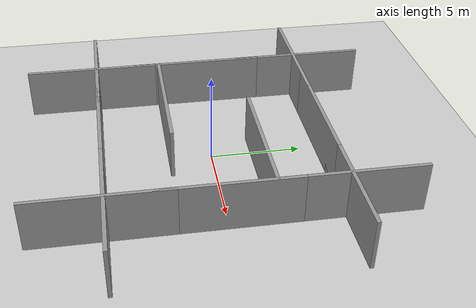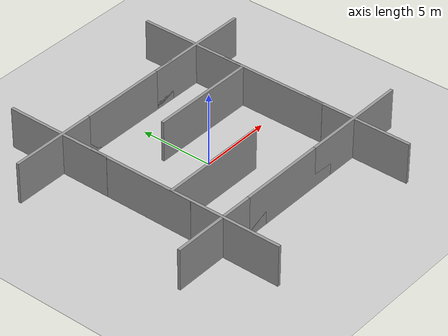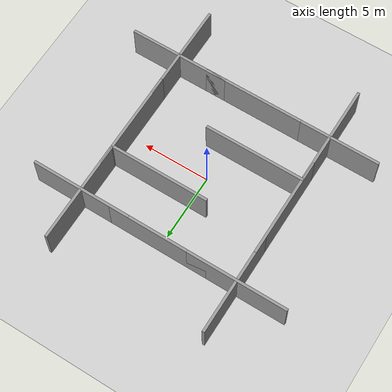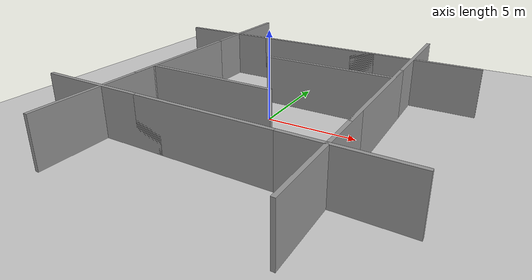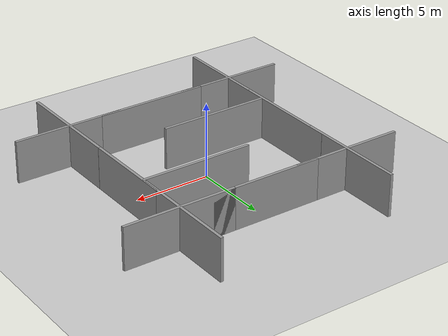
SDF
<?xml version="1.0" ?>
<sdf version="1.5">

  <world name="default">
    <!-- A global light source -->
    <include>
      <uri>model://sun</uri>
    </include>
    <!-- A ground plane -->
    <include>
      <uri>model://ground_plane</uri>
    </include>

    <!-- Adding Walls -->
    <include>
      <uri>model://grey_wall</uri>
      <name>wall1</name>
      <pose>6 0 0 0 0 1.57</pose>
    </include>
    <include>
      <uri>model://grey_wall</uri>
      <name>wall2</name>
      <pose>6 6.25 0 0 0 1.57</pose>
    </include>
    <include>
      <uri>model://grey_wall</uri>
      <name>wall3</name>
      <pose>6 -6.25 0 0 0 1.57</pose>
    </include>

    <include>
      <uri>model://grey_wall</uri>
      <name>wall4</name>
      <pose>-6 0 0 0 0 1.57</pose>
    </include>
    <include>
      <uri>model://grey_wall</uri>
      <name>wall5</name>
      <pose>-6 6.25 0 0 0 1.57</pose>
    </include>
    <include>
      <uri>model://grey_wall</uri>
      <name>wall6</name>
      <pose>-6 -6.25 0 0 0 1.57</pose>
    </include>

    <include>
      <uri>model://grey_wall</uri>
      <name>wall7</name>
      <pose>0 6 0 0 0 0</pose>
    </include>
    <include>
      <uri>model://grey_wall</uri>
      <name>wall8</name>
      <pose>6 6 0 0 0 0</pose>
    </include>
    <include>
      <uri>model://grey_wall</uri>
      <name>wall9</name>
      <pose>-6 6 0 0 0 0</pose>
    </include>

    <include>
      <uri>model://grey_wall</uri>
      <name>wall10</name>
      <pose>0 -6 0 0 0 0</pose>
    </include>
    <include>
      <uri>model://grey_wall</uri>
      <name>wall11</name>
      <pose>6 -6 0 0 0 0</pose>
    </include>
    <include>
      <uri>model://grey_wall</uri>
      <name>wall12</name>
      <pose>-6 -6 0 0 0 0</pose>
    </include>

    <!-- obstacle walls -->

    <include>
      <uri>model://grey_wall</uri>
      <name>wall13</name>
      <pose>-2.3 -2.3 0 0 0 0</pose>
    </include>
    <include>
      <uri>model://grey_wall</uri>
      <name>wall14</name>
      <pose>2.3 2.3 0 0 0 0</pose>
    </include>

    <!-- add in my custom object -->

  </world>
</sdf>

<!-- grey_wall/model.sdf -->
<sdf version="1.5">
  <model name="grey_wall">
    <static>true</static>
    <link name="link">
      <pose>0 0 1.4 0 0 0</pose>
      <collision name="collision">
        <geometry>
          <box>
            <size>7.5 0.2 2.8</size>
          </box>
        </geometry>
      </collision>
      <visual name="visual">
        <cast_shadows>false</cast_shadows>
        <geometry>
          <box>
            <size>7.5 0.2 2.8</size>
          </box>
        </geometry>
        <material>
          <script>
            <uri>model://../model_source/models/grey_wall/materials/scripts</uri>
            <uri>model://../model_source/models/grey_wall/materials/textures</uri>
            <name>vrc/grey_wall</name>
          </script>
        </material>
      </visual>
    </link>
  </model>
</sdf>
